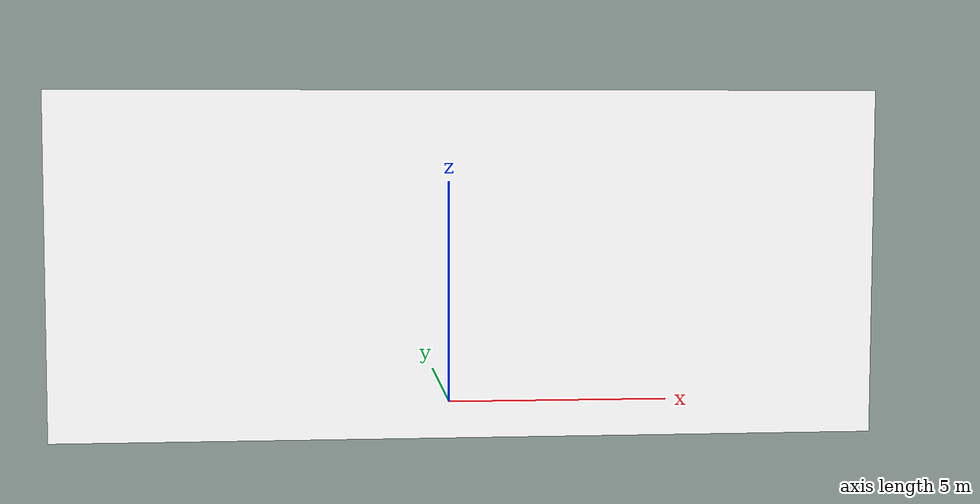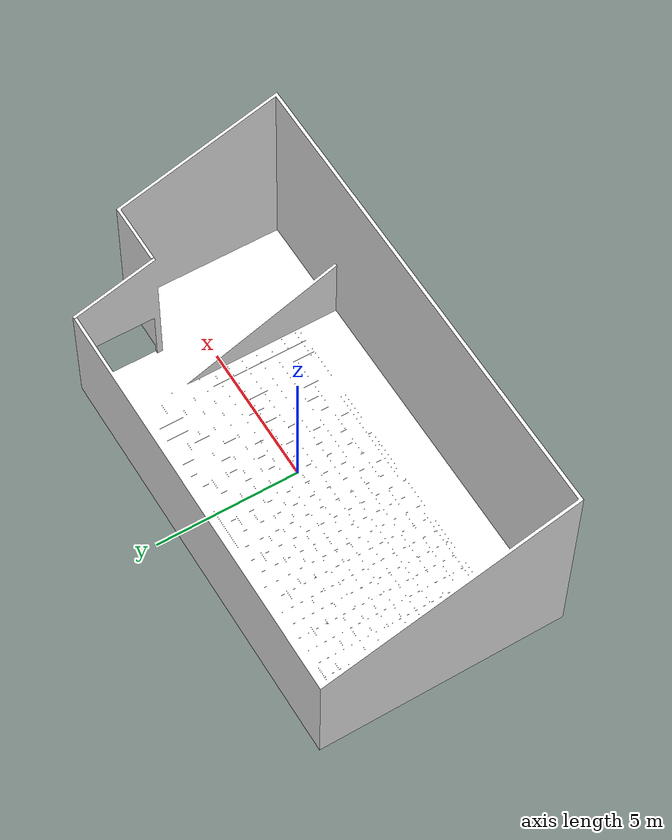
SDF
<?xml version="1.0" ?>
<sdf version="1.6">
    <model name="mecatronica">
        <link name="base">
            <pose>0 0 0 0 0 0</pose>

            <collision name="collision">
                <geometry>
                <mesh>
                    <uri>model://mecatronica/meshes/mecatronica.dae</uri>
                </mesh>
                </geometry>
            </collision>

            <visual name="visual">
                <geometry>
                <mesh>
                    <uri>model://mecatronica/meshes/mecatronica.dae</uri>
                </mesh>
                </geometry>

                <material>

                    <script>
                        <uri>model://mecatronica/materials/textures</uri>
                        <uri>model://mecatronica/materials/scripts</uri>
                        <name>mecatronica/texture</name>
                    </script>

                    <shader type = 'vertex'>
                        <normal_map>__default__</normal_map>
                    </shader>
                    <ambient>1 1 1 1</ambient>
                    <diffuse>1 1 1 1</diffuse>
                    <specular>1 1 1 1</specular>
                    <emissive>0 0 0 1</emissive>

                </material>

            </visual>

        </link>
    </model>
</sdf>
